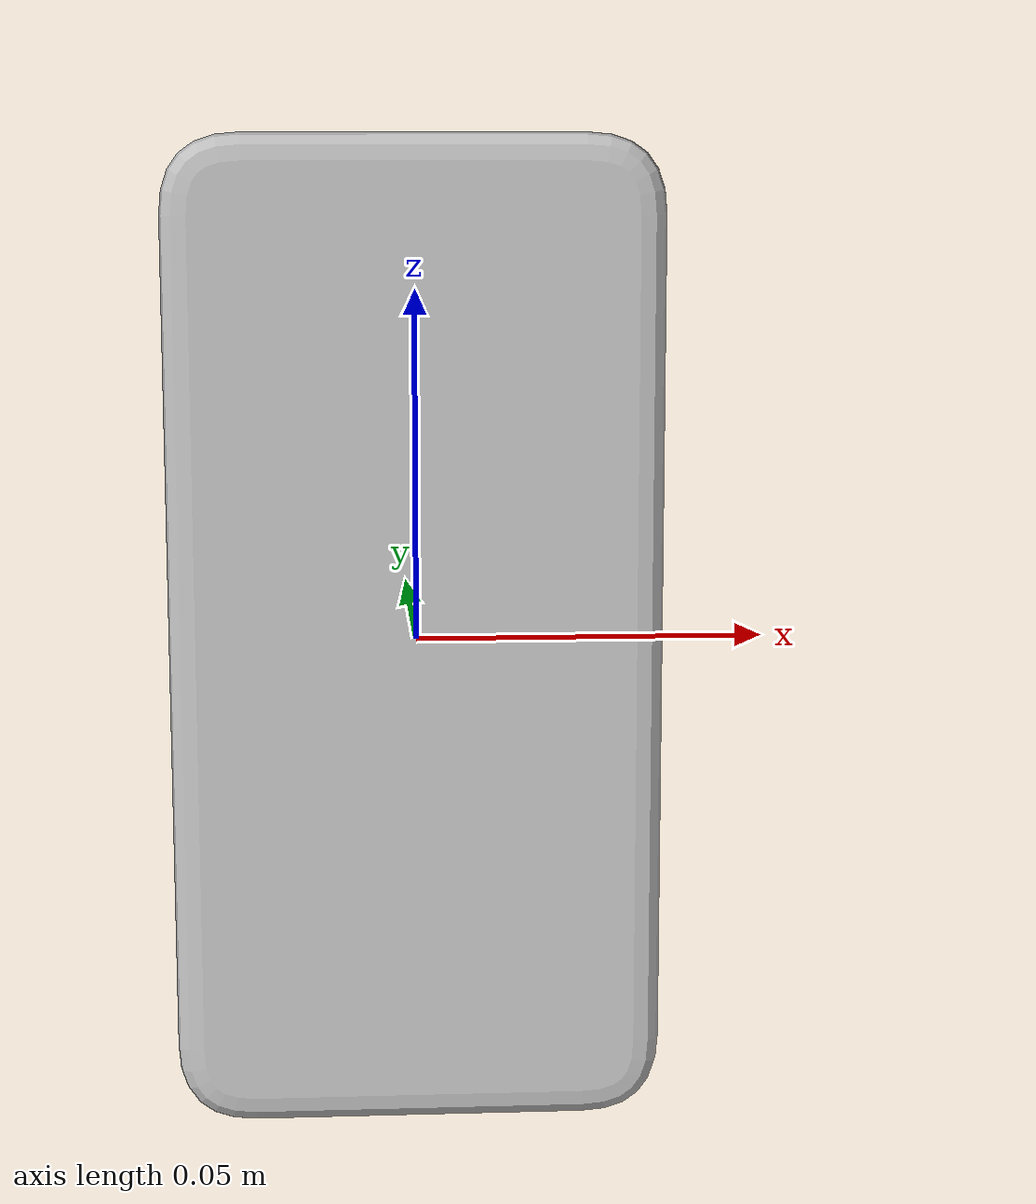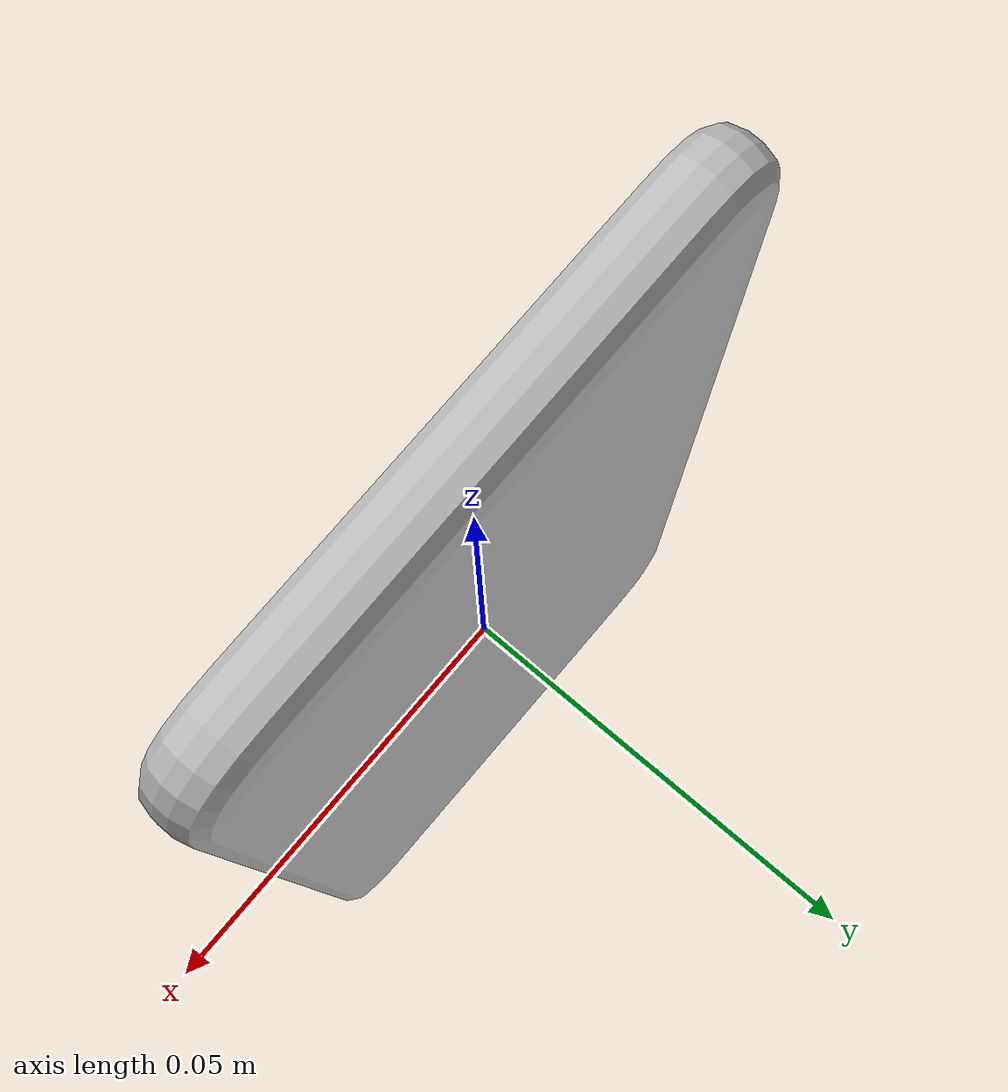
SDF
<?xml version='1.0' ?>
<sdf version='1.6'>
  <model name='Phone'>
    <static>true</static>
    <link name='link'>
      <collision name='collision'>
        <geometry>
          <mesh>
            <uri>model://Phone/meshes/Phone.dae</uri>
          </mesh>
        </geometry>
      </collision>
      <visual name='visual'>
        <geometry>
          <mesh>
            <uri>model://Phone/meshes/Phone.dae</uri>
          </mesh>
        </geometry>
      </visual>
    </link>
  </model>
</sdf>
